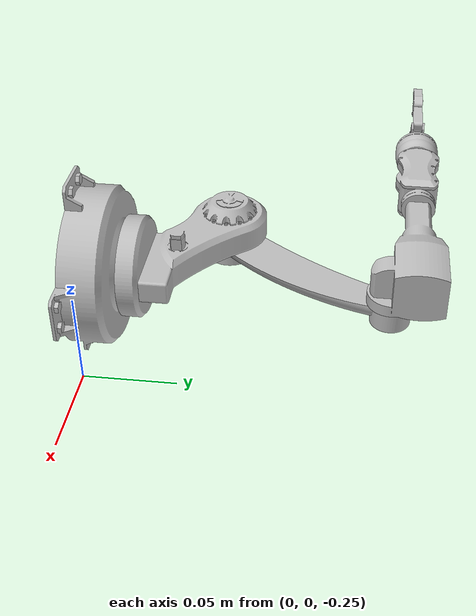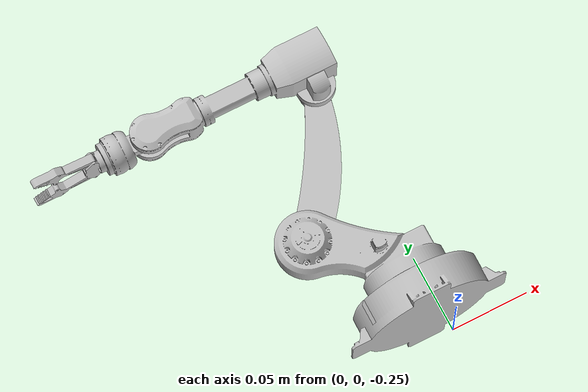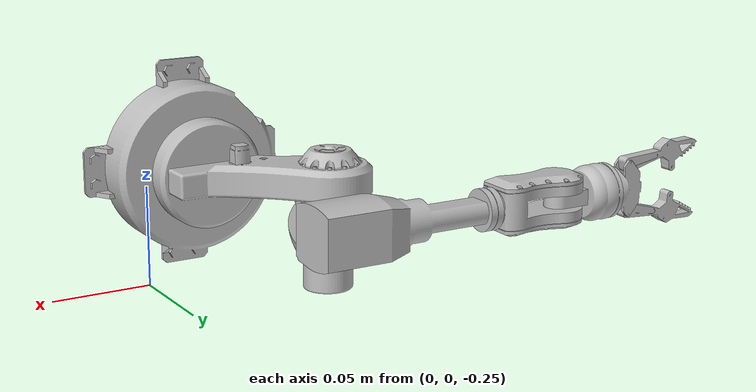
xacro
<?xml version="1.0"?>
<robot xmlns:xacro="http://www.ros.org/wiki/xacro" name="New_Robotic_Arm">

    <xacro:arg name="prefix" default=""/>
    <xacro:arg name="add_world" default="true"/>
    <xacro:arg name="use_gripper" default="true"/>

    <xacro:if value="$(arg add_world)">
        <link name="world"/>
        <joint name="$(arg prefix)virtual_joint" type="fixed">
            <parent link="world"/>
            <child link="$(arg prefix)base_link"/>
            <origin xyz="0 0 0" rpy="0 0 0"/>
        </joint>
    </xacro:if>

    <xacro:include filename="$(find mecha_robot_description)/urdf/mech/custom_arm.urdf.xacro"/>
    <xacro:custom_arm prefix="$(arg prefix)"/>

    <xacro:if value="$(arg use_gripper)">
        <xacro:include filename="$(find mecha_robot_description)/urdf/mech/custom_gripper.urdf.xacro"/>
        <xacro:custom_gripper parent="$(arg prefix)sixth_jaw_1"/>
    </xacro:if>

    <xacro:include filename="$(find mecha_robot_description)/urdf/control/custom_robot_ros2_control.urdf.xacro" />
    <xacro:custom_robot_ros2_control prefix="$(arg prefix)"/>

</robot>

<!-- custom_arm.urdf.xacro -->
<robot xmlns:xacro="http://www.ros.org/wiki/xacro">

  <xacro:macro name="custom_arm" params="prefix">

    <link name="${prefix}base_link">
      <visual>
        <origin xyz="0 0 0" rpy="0 0 0"/>
        <geometry>
          <mesh filename="package://mecha_robot_description/meshes/mecha_robot/base_link.stl" scale="0.001 0.001 0.001"/>
        </geometry>
        <material name="silver"><color rgba="0.75 0.75 0.75 1.0"/></material>
      </visual>
      <collision>
        <origin xyz="0 0 0" rpy="0 0 0"/>
        <geometry>
          <mesh filename="package://mecha_robot_description/meshes/mecha_robot/base_link.stl" scale="0.001 0.001 0.001"/>
        </geometry>
      </collision>
      <inertial>
         <mass value="0.145"/>
         <inertia ixx="0.000064" iyy="0.000115" izz="0.000064" ixy="0" iyz="0" ixz="0"/>
      </inertial>
    </link>

    <link name="${prefix}first_jaw_1">
      <visual>
        <origin xyz="0.018495 -0.02445 0.189098" rpy="0 0 0"/>
        <geometry>
          <mesh filename="package://mecha_robot_description/meshes/mecha_robot/first_jaw_1.stl" scale="0.001 0.001 0.001"/>
        </geometry>
        <material name="silver"/>
      </visual>
      <collision>
        <origin xyz="0.018495 -0.02445 0.189098" rpy="0 0 0"/>
        <geometry>
          <mesh filename="package://mecha_robot_description/meshes/mecha_robot/first_jaw_1.stl" scale="0.001 0.001 0.001"/>
        </geometry>
      </collision>
      <inertial>
        <mass value="0.465"/>
        <inertia ixx="0.00022" iyy="0.00027" izz="0.00037" ixy="0.00014" iyz="-0.00005" ixz="0.00006"/>
      </inertial>
    </link>

    <joint name="${prefix}joint1" type="continuous">
      <origin xyz="-0.018495 0.02445 -0.189098" rpy="0 0 0"/>
      <parent link="${prefix}base_link"/>
      <child link="${prefix}first_jaw_1"/>
      <axis xyz="0.0 -1.0 0.0"/>
    </joint>

    <link name="${prefix}second_jaw_1">
      <visual>
        <origin xyz="0.061323 -0.07045 0.181976" rpy="0 0 0"/>
        <geometry>
           <mesh filename="package://mecha_robot_description/meshes/mecha_robot/second_jaw_1.stl" scale="0.001 0.001 0.001"/>
        </geometry>
        <material name="silver"/>
      </visual>
      <collision>
        <origin xyz="0.061323 -0.07045 0.181976" rpy="0 0 0"/>
        <geometry>
           <mesh filename="package://mecha_robot_description/meshes/mecha_robot/second_jaw_1.stl" scale="0.001 0.001 0.001"/>
        </geometry>
      </collision>
      <inertial>
        <mass value="0.031"/>
        <inertia ixx="0.000034" iyy="0.000013" izz="0.000045" ixy="0" iyz="0" ixz="0"/>
      </inertial>
    </link>

    <joint name="${prefix}joint2" type="revolute">
      <origin xyz="-0.042828 0.046 0.007122" rpy="0 0 0"/>
      <parent link="${prefix}first_jaw_1"/>
      <child link="${prefix}second_jaw_1"/>
      <axis xyz="0.298 0.0 0.954"/>
      <limit upper="2.09" lower="-1.04" effort="100" velocity="100"/>
    </joint>

    <link name="${prefix}third_jaw_1">
      <visual>
        <origin xyz="0.013607 -0.157053 0.196915" rpy="0 0 0"/>
        <geometry>
           <mesh filename="package://mecha_robot_description/meshes/mecha_robot/third_jaw_1.stl" scale="0.001 0.001 0.001"/>
        </geometry>
        <material name="silver"/>
      </visual>
      <collision>
        <origin xyz="0.013607 -0.157053 0.196915" rpy="0 0 0"/>
        <geometry>
           <mesh filename="package://mecha_robot_description/meshes/mecha_robot/third_jaw_1.stl" scale="0.001 0.001 0.001"/>
        </geometry>
      </collision>
      <inertial>
        <mass value="0.0438"/>
        <inertia ixx="0.000007" iyy="0.000021" izz="0.00002" ixy="-0.000001" iyz="0" ixz="0.000005"/>
      </inertial>
    </link>

    <joint name="${prefix}joint3" type="continuous">
      <origin xyz="0.047716 0.086603 -0.014939" rpy="0 0 0"/>
      <parent link="${prefix}second_jaw_1"/>
      <child link="${prefix}third_jaw_1"/>
      <axis xyz="-0.298 0.0 -0.954"/>
    </joint>

    <link name="${prefix}fourth_jaw_1">
      <visual>
        <origin xyz="0.077637 -0.160859 0.162491" rpy="0 0 0"/>
        <geometry>
           <mesh filename="package://mecha_robot_description/meshes/mecha_robot/fourth_jaw_1.stl" scale="0.001 0.001 0.001"/>
        </geometry>
        <material name="silver"/>
      </visual>
      <collision>
        <origin xyz="0.077637 -0.160859 0.162491" rpy="0 0 0"/>
        <geometry>
           <mesh filename="package://mecha_robot_description/meshes/mecha_robot/fourth_jaw_1.stl" scale="0.001 0.001 0.001"/>
        </geometry>
      </collision>
      <inertial>
        <mass value="0.0174"/>
        <inertia ixx="0.000002" iyy="0.000003" izz="0.000003" ixy="0" iyz="0" ixz="0.000001"/>
      </inertial>
    </link>

    <joint name="${prefix}joint4" type="continuous">
      <origin xyz="-0.06403 0.003806 0.034424" rpy="0 0 0"/>
      <parent link="${prefix}third_jaw_1"/>
      <child link="${prefix}fourth_jaw_1"/>
      <axis xyz="0.946 0.127 -0.296"/>
    </joint>

    <link name="${prefix}fifth_jaw_1">
      <visual>
        <origin xyz="0.108766 -0.153426 0.154227" rpy="0 0 0"/>
        <geometry>
           <mesh filename="package://mecha_robot_description/meshes/mecha_robot/fifth_jaw_1.stl" scale="0.001 0.001 0.001"/>
        </geometry>
        <material name="silver"/>
      </visual>
      <collision>
        <origin xyz="0.108766 -0.153426 0.154227" rpy="0 0 0"/>
        <geometry>
           <mesh filename="package://mecha_robot_description/meshes/mecha_robot/fifth_jaw_1.stl" scale="0.001 0.001 0.001"/>
        </geometry>
      </collision>
      <inertial>
        <mass value="0.0614"/>
        <inertia ixx="0.000004" iyy="0.000005" izz="0.000005" ixy="0" iyz="0" ixz="0"/>
      </inertial>
    </link>

    <joint name="${prefix}joint5" type="revolute">
      <origin xyz="-0.031129 -0.007433 0.008264" rpy="0 0 0"/>
      <parent link="${prefix}fourth_jaw_1"/>
      <child link="${prefix}fifth_jaw_1"/>
      <axis xyz="-0.006 -0.910 -0.413"/>
      <limit upper="1.83" lower="-1.83" effort="100" velocity="100"/>
    </joint>

    <link name="${prefix}sixth_jaw_1">
       <visual>
          <origin xyz="0.13515 -0.152999 0.144544" rpy="0 0 0"/>
          <geometry>
             <mesh filename="package://mecha_robot_description/meshes/mecha_robot/sixth_jaw_1.stl" scale="0.001 0.001 0.001"/>
          </geometry>
          <material name="silver"/>
       </visual>
       <collision>
          <origin xyz="0.13515 -0.152999 0.144544" rpy="0 0 0"/>
          <geometry>
             <mesh filename="package://mecha_robot_description/meshes/mecha_robot/sixth_jaw_1.stl" scale="0.001 0.001 0.001"/>
          </geometry>
       </collision>
       <inertial>
         <origin xyz="-0.004 -0.0005 0.001" rpy="0 0 0"/>
         <mass value="0.0022"/>
         <inertia ixx="0.00001" iyy="0.00001" izz="0.00001" ixy="0" iyz="0" ixz="0"/>
       </inertial>
    </link>

    <joint name="${prefix}joint6" type="continuous">
        <origin xyz="-0.026384 -0.000427 0.009683" rpy="0 0 0"/>
        <parent link="${prefix}fifth_jaw_1"/>
        <child link="${prefix}sixth_jaw_1"/>
        <axis xyz="0.946 0.127 -0.296"/>
    </joint>

  <gazebo reference="${prefix}first_jaw_1">
        <material>Gazebo/DarkGrey</material>
    </gazebo>

    <gazebo reference="${prefix}second_jaw_1">
        <material>Gazebo/DarkGrey</material>
    </gazebo>

    <gazebo reference="${prefix}third_jaw_1">
        <material>Gazebo/DarkGrey</material>
    </gazebo>

    <gazebo reference="${prefix}fourth_jaw_1">
        <material>Gazebo/Grey</material>
    </gazebo>

    <gazebo reference="${prefix}fifth_jaw_1">
        <material>Gazebo/Grey</material>
    </gazebo>

    <gazebo reference="${prefix}sixth_jaw_1">
        <material>Gazebo/Grey</material>
    </gazebo>

  </xacro:macro>
</robot>

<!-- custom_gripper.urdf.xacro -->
<robot xmlns:xacro="http://www.ros.org/wiki/xacro">

  <xacro:macro name="custom_gripper" params="parent">

    <link name="seventh_jaw_right_1">
      <inertial>
        <origin xyz="-0.0176 0.0029 0.0036" rpy="0 0 0"/>
        <mass value="0.00142"/>
        <inertia ixx="0.00001" iyy="0.00001" izz="0.00001" ixy="0" iyz="0" ixz="0"/>
      </inertial>
      <visual>
        <origin xyz="0.144119 -0.162849 0.137226" rpy="0 0 0"/>
        <geometry>
          <mesh filename="package://mecha_robot_description/meshes/mecha_robot/seventh_jaw_right_1.stl" scale="0.001 0.001 0.001"/>
        </geometry>
        <material name="silver"/>
      </visual>
      <collision>
        <origin xyz="0.144119 -0.162849 0.137226" rpy="0 0 0"/>
        <geometry>
          <mesh filename="package://mecha_robot_description/meshes/mecha_robot/seventh_jaw_right_1.stl" scale="0.001 0.001 0.001"/>
        </geometry>
      </collision>
    </link>

    <joint name="Revolute_7" type="revolute">
      <origin xyz="-0.008969 0.00985 0.007318" rpy="0 0 0"/>
      <parent link="${parent}"/>
      <child link="seventh_jaw_right_1"/>
      <axis xyz="0.3136 -0.1494 0.9377"/>
      <limit upper="0.261" lower="-0.261" effort="100" velocity="100"/>
    </joint>

    <link name="seventh_jaw_left_1">
      <inertial>
        <origin xyz="-0.0176 0.0029 0.0036" rpy="0 0 0"/>
        <mass value="0.00142"/>
        <inertia ixx="0.00001" iyy="0.00001" izz="0.00001" ixy="0" iyz="0" ixz="0"/>
      </inertial>
      <visual>
        <origin xyz="0.142369 -0.139984 0.141455" rpy="0 0 0"/>
        <geometry>
          <mesh filename="package://mecha_robot_description/meshes/mecha_robot/seventh_jaw_left_1.stl" scale="0.001 0.001 0.001"/>
        </geometry>
        <material name="silver"/>
      </visual>
      <collision>
        <origin xyz="0.142369 -0.139984 0.141455" rpy="0 0 0"/>
        <geometry>
          <mesh filename="package://mecha_robot_description/meshes/mecha_robot/seventh_jaw_left_1.stl" scale="0.001 0.001 0.001"/>
        </geometry>
      </collision>
    </link>

    <joint name="Revolute_8" type="revolute">
      <origin xyz="-0.007219 -0.013015 0.003089" rpy="0 0 0"/>
      <parent link="${parent}"/>
      <child link="seventh_jaw_left_1"/>
      <axis xyz="0.3136 -0.1494 0.9377"/>
      <limit upper="0.261" lower="-0.261" effort="100" velocity="100"/>
    </joint>

  <gazebo reference="seventh_jaw_right_1">
        <material>Gazebo/Black</material>
    </gazebo>

    <gazebo reference="seventh_jaw_left_1">
        <material>Gazebo/Black</material>
    </gazebo>

  </xacro:macro>
</robot>
